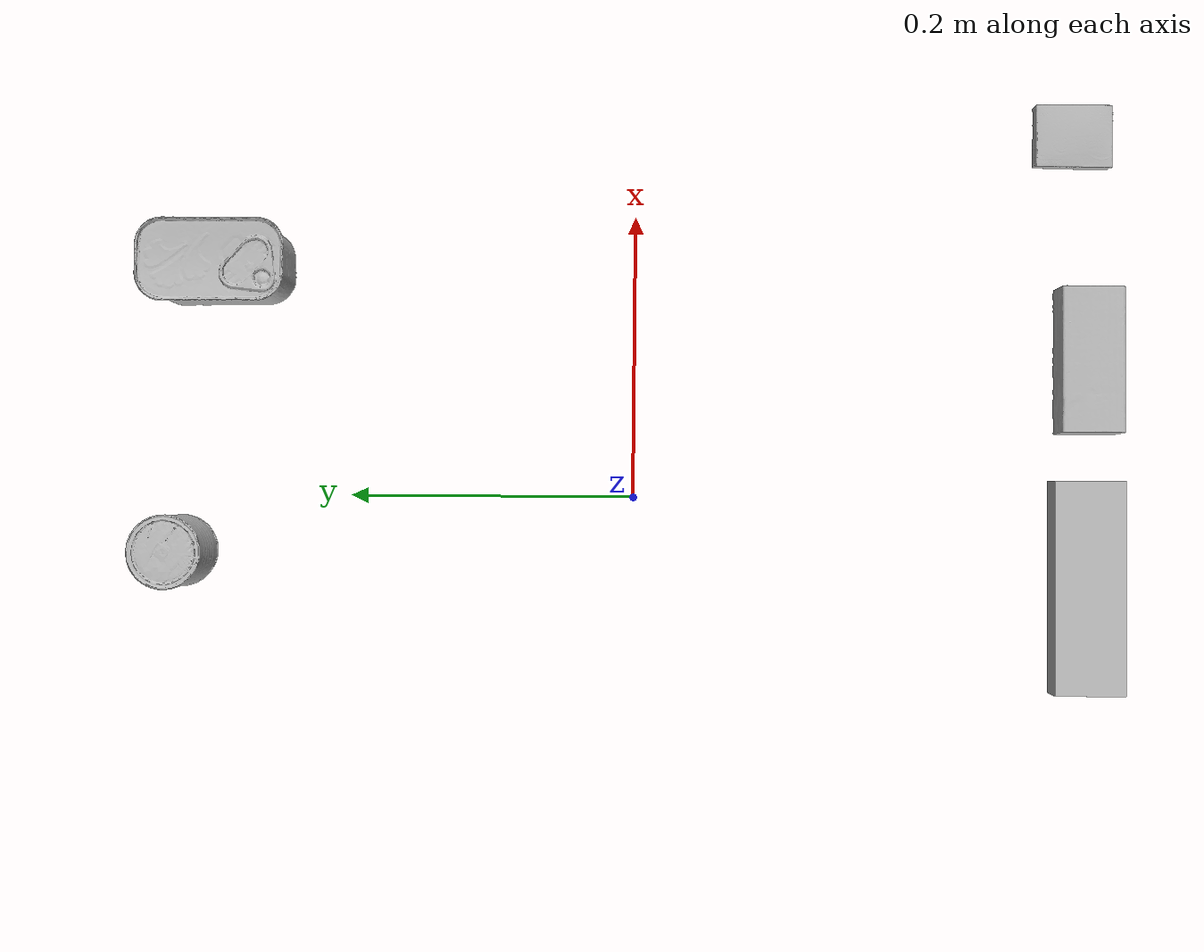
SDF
<?xml version="1.0" ?>
<sdf version="1.4">
  <world name="default">
    <light name="light1" type="point">
      <pose>0 0 1 0 0 0</pose>
      <diffuse>3 3 3 1</diffuse>
      <specular>3 3 3 1</specular>
    </light>
    <light name="light2" type="point">
      <pose>0 0.5 2 0 0 0</pose>
      <diffuse>1 1 1 1</diffuse>
      <specular>1 1 1 1</specular>
    </light>
    <light name="light3" type="point">
      <pose>0 0.5 2 0 0 0</pose>
      <diffuse>3 3 3 1</diffuse>
      <specular>3 3 3 1</specular>
    </light>
    <scene>
      <ambient>0.7 0.7 0.7</ambient>
    </scene>
    <model name="box1">
      <link name="link_box1">
        <collision name="default">
          <geometry>
            <mesh>
              <uri>model://pudding_box/collision_meshes/collision.obj</uri>
              <scale>0.5 0.5 0.5</scale>
            </mesh>
          </geometry>
          <surface>
            <friction>
              <ode>
                <mu>0.5</mu>
                <mu2>0.5</mu2>
              </ode>
            </friction>
          </surface>
        </collision>
        <visual name="default">
          <geometry>
            <mesh>
              <uri>model://pudding_box/visual_meshes/visual.dae</uri>
              <scale>0.5 0.5 0.5</scale>
            </mesh>
          </geometry>
        </visual>
        <inertial>
          <mass>0.0642586499452591</mass>
          <pose>0.00024474109522998333 0.00040339428232982755 -0.0002594413817860186 0.005213101302141142 -0.006603800581388343 0.020079827019462423</pose>
          <inertia>
            <ixx>1.8160274e-05</ixx>
            <iyy>1.221836e-05</iyy>
            <izz>2.6818392e-05</izz>
            <ixy>0</ixy>
            <ixz>0</ixz>
            <iyz>0</iyz>
          </inertia>
        </inertial>
      </link>
      <pose>0.25974133610725403 -0.3102521002292633 0.009862901642918587 0.022348699698035056 -0.01139162625176719 -9.36981416203137e-05</pose>
    </model>
    <model name="box2">
      <link name="link_box2">
        <collision name="default">
          <geometry>
            <mesh>
              <uri>model://wood_block/collision_meshes/collision.obj</uri>
              <scale>0.5 0.5 0.5</scale>
            </mesh>
          </geometry>
          <surface>
            <friction>
              <ode>
                <mu>0.5</mu>
                <mu2>0.5</mu2>
              </ode>
            </friction>
          </surface>
        </collision>
        <visual name="default">
          <geometry>
            <mesh>
              <uri>model://wood_block/visual_meshes/visual.dae</uri>
              <scale>0.5 0.5 0.5</scale>
            </mesh>
          </geometry>
        </visual>
        <inertial>
          <mass>0.2432606816291809</mass>
          <pose>-2.9066577553749084e-06 -0.000285404734313488 0.00013204290007706732 -0.0522103103121059 -0.005192696448147362 -0.0068613788455752145</pose>
          <inertia>
            <ixx>8.1379905e-05</ixx>
            <iyy>0.0002570791</iyy>
            <izz>0.00025611752</izz>
            <ixy>0</ixy>
            <ixz>0</ixz>
            <iyz>0</iyz>
          </inertia>
        </inertial>
      </link>
      <pose>0.09994173049926758 -0.31943440437316895 0.022629257291555405 -0.005208467812430025 0.005718712075542679 0.005303920438713571</pose>
    </model>
    <model name="box3">
      <link name="link_box3">
        <collision name="default">
          <geometry>
            <mesh>
              <uri>model://jenga/collision_meshes/collision.obj</uri>
              <scale>1.0 1.0 1.0</scale>
            </mesh>
          </geometry>
          <surface>
            <friction>
              <ode>
                <mu>0.5</mu>
                <mu2>0.5</mu2>
              </ode>
            </friction>
          </surface>
        </collision>
        <visual name="default">
          <geometry>
            <mesh>
              <uri>model://jenga/visual_meshes/visual.dae</uri>
              <scale>1.0 1.0 1.0</scale>
            </mesh>
          </geometry>
        </visual>
        <inertial>
          <mass>0.20405839383602142</mass>
          <pose>-2.502855807051674e-07 -0.00010250010382151231 -4.0923401684267446e-05 0.0 -7.342155186052628e-07 0.0</pose>
          <inertia>
            <ixx>5.6467907e-05</ixx>
            <iyy>0.000382625</iyy>
            <izz>0.00040848472</izz>
            <ixy>0</ixy>
            <ixz>0</ixz>
            <iyz>0</iyz>
          </inertia>
        </inertial>
      </link>
      <pose>-0.0599994957447052 -0.31989747285842896 0.014999995008111 2.261107306891991e-09 -1.8113155351356218e-09 -6.071384286259734e-09</pose>
    </model>
    <model name="can1">
      <link name="link_can1">
        <collision name="default">
          <geometry>
            <mesh>
              <uri>model://potted_meat_can/collision_meshes/collision.obj</uri>
              <scale>1.0 1.0 1.0</scale>
            </mesh>
          </geometry>
          <surface>
            <friction>
              <ode>
                <mu>0.5</mu>
                <mu2>0.5</mu2>
              </ode>
            </friction>
          </surface>
        </collision>
        <visual name="default">
          <geometry>
            <mesh>
              <uri>model://potted_meat_can/visual_meshes/visual.dae</uri>
              <scale>1.0 1.0 1.0</scale>
            </mesh>
          </geometry>
        </visual>
        <inertial>
          <mass>0.4665880799293518</mass>
          <pose>0.0002288814284838736 -5.989112105453387e-05 -0.0006367449532262981 -0.028093382538733707 -0.007232605550223235 0.01540626728411476</pose>
          <inertia>
            <ixx>0.0006002166</ixx>
            <iyy>0.0003646772</iyy>
            <izz>0.00043654343</izz>
            <ixy>0</ixy>
            <ixz>0</ixz>
            <iyz>0</iyz>
          </inertia>
        </inertial>
      </link>
      <pose>0.15989847481250763 0.29000547528266907 0.04212800785899162 -4.840692449249814e-08 -4.5454357156415357e-07 -6.927437318496676e-08</pose>
    </model>
    <model name="can2">
      <link name="link_can2">
        <collision name="default">
          <geometry>
            <mesh>
              <uri>model://master_chef_can/collision_meshes/collision.obj</uri>
              <scale>0.5 0.5 0.5</scale>
            </mesh>
          </geometry>
          <surface>
            <friction>
              <ode>
                <mu>0.5</mu>
                <mu2>0.5</mu2>
              </ode>
            </friction>
          </surface>
        </collision>
        <visual name="default">
          <geometry>
            <mesh>
              <uri>model://master_chef_can/visual_meshes/visual.dae</uri>
              <scale>0.5 0.5 0.5</scale>
            </mesh>
          </geometry>
        </visual>
        <inertial>
          <mass>0.1648906171321869</mass>
          <pose>-4.661964703700505e-05 1.3926853625889635e-07 -5.079993206891231e-05 -0.0017995099244119924 0.0006479308957776391 -0.6102586503741109</pose>
          <inertia>
            <ixx>9.677961e-05</ixx>
            <iyy>9.606731e-05</iyy>
            <izz>5.3478136e-05</izz>
            <ixy>0</ixy>
            <ixz>0</ixz>
            <iyz>0</iyz>
          </inertia>
        </inertial>
      </link>
      <pose>-0.03987777605652809 0.32008427381515503 0.03530200198292732 -1.4431422264283453e-06 -7.782947982250227e-07 -3.5607089180211774e-07</pose>
    </model>
  </world>
</sdf>
